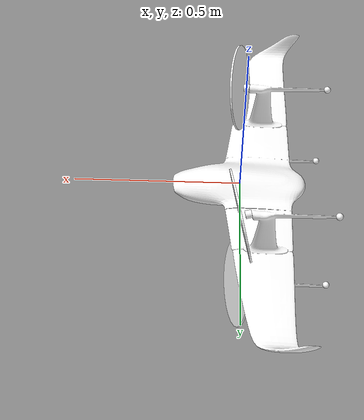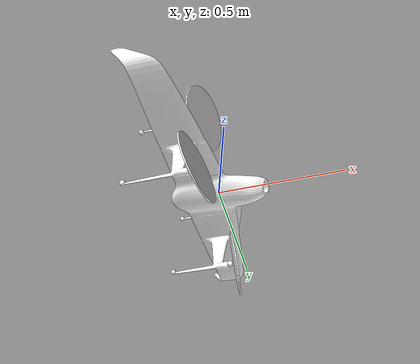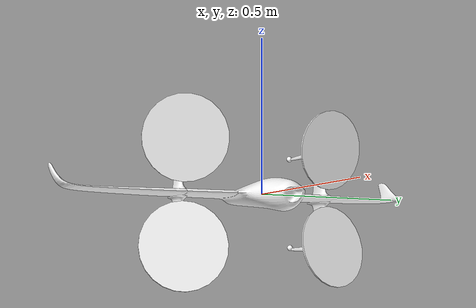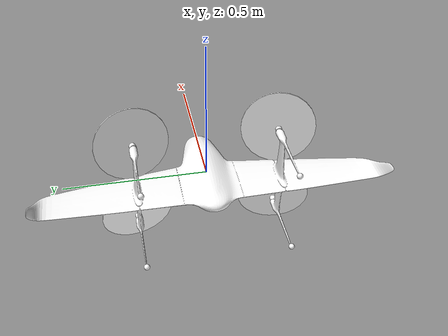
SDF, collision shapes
<?xml version="1.0"?>
<sdf version="1.7">
  <model name="swan_k1_hwing">
    <pose>0 0 0 0 0 0</pose>
    <static>0</static>

    <link name="base_link">`
      <!-- \todo provide proper inertial : actual mass 1.75 kg -->
      <inertial>
        <pose>0 0 0 0 0 0</pose>
        <mass>1.5</mass>
        <inertia>
          <ixx>0.01</ixx>
          <ixy>0</ixy>
          <ixz>0</ixz>
          <iyy>0.01625</iyy>
          <iyz>0</iyz>
          <izz>0.01625</izz>
        </inertia>
      </inertial>
      <collision name="collision">
        <geometry>
          <mesh>
            <uri>model://swan_k1_hwing/meshes/swan_k1_hwing_fuselage.dae</uri>
          </mesh>
        </geometry>
      </collision>
      <visual name="fuselage_visual">
        <geometry>
          <mesh>
            <uri>model://swan_k1_hwing/meshes/swan_k1_hwing_fuselage.dae</uri>
          </mesh>
        </geometry>
        <material>
          <ambient>1 1 1</ambient>
          <diffuse>1 1 1</diffuse>
          <specular>0.5 0.5 0.5</specular>
          <pbr>
            <metal>
              <albedo_map>model://swan_k1_hwing/materials/textures/foxmap.tga</albedo_map>
              <roughness>0.5</roughness>
              <metalness>0.5</metalness>
            </metal>
          </pbr>
        </material>
      </visual>

      <!-- debug visuals for leg collisions -->

      <collision name="leg1_collision">
        <pose>-0.26 -0.25 -0.16 0 0 0</pose>
        <geometry>
          <sphere>
            <radius>0.01</radius>
          </sphere>
        </geometry>
      </collision>
      <collision name="leg2_collision">
        <pose>-0.26 0.25 0.16 0 0 0</pose>
        <geometry>
          <sphere>
            <radius>0.01</radius>
          </sphere>
        </geometry>
      </collision>
      <collision name="leg3_collision">
        <pose>-0.26 0.25 -0.16 0 0 0</pose>
        <geometry>
          <sphere>
            <radius>0.01</radius>
          </sphere>
        </geometry>
      </collision>
      <collision name="leg4_collision">
        <pose>-0.26 -0.25 0.16 0 0 0</pose>
        <geometry>
          <sphere>
            <radius>0.01</radius>
          </sphere>
        </geometry>
      </collision>

      <!-- box visual and collision for horizontal calibration -->

      <!-- debug visuals for lift-drag -->

    </link>

    <!-- https://ardupilot.org/plane/docs/guide-tailsitter.html#nyt-quad-x-motor-tailsitter -->
    <!-- CCW -->
    <link name="motor1_link">
      <pose relative_to="motor1_joint">0 0 0 0 0 0</pose>
      <inertial>
        <pose>0 0 0 0 0 0</pose>
        <mass>0.025</mass>
        <inertia>
          <ixx>0.000130417</ixx>
          <ixy>0</ixy>
          <ixz>0</ixz>
          <iyy>0.000130417</iyy>
          <iyz>0</iyz>
          <izz>0.000260417</izz>
        </inertia>
      </inertial>
      <collision name="motor_collision">
        <geometry>
          <cylinder>
            <length>0.0178</length>
            <radius>0.0112</radius>
          </cylinder>
        </geometry>
      </collision>
      <collision name="prop_collision">
        <pose>0 0 0.022 0 0 0</pose>
        <geometry>
          <cylinder>
            <length>0.005</length>
            <radius>0.13</radius>
          </cylinder>
        </geometry>
      </collision>
      <!-- debug visuals for motor identification -->
      <visual name="motor_visual">
        <pose degrees="true">0 0 -0.008 0 -90 0</pose>
        <geometry>
          <mesh>
            <uri>model://swan_k1_hwing/meshes/swan_k1_hwing_motor.dae</uri>
          </mesh>
        </geometry>
        <material>
          <ambient>1 1 1</ambient>
          <diffuse>1 1 1</diffuse>
          <specular>1 1 1</specular>
          <pbr>
            <metal>
              <albedo_map>model://swan_k1_hwing/materials/textures/blue_metal/blue_metal_basecolor.jpg</albedo_map>
              <metalness_map>model://swan_k1_hwing/materials/textures/blue_metal/blue_metal_metallic.jpg</metalness_map>
              <normal_map>model://swan_k1_hwing/materials/textures/blue_metal/blue_metal_normal.jpg</normal_map>
              <roughness_map>model://swan_k1_hwing/materials/textures/blue_metal/blue_metal_roughness.jpg</roughness_map>
              <roughness>1.0</roughness>
              <metalness>1.0</metalness>
            </metal>
          </pbr>
        </material>
      </visual>
      <visual name='prop_visual'>
        <pose>0 0 0.015 0 0 0</pose>
        <geometry>
          <mesh>
            <scale>1 1 1</scale>
            <uri>model://swan_k1_hwing/meshes/iris_prop_ccw.dae</uri>
          </mesh>
        </geometry>
        <material>
          <diffuse>1.0 1.0 1.0</diffuse>
          <specular>1.0 1.0 1.0</specular>
          <pbr>
            <metal>
              <albedo_map>model://swan_k1_hwing/materials/textures/metal_graphite/metal_graphite_basecolor.jpg</albedo_map>
              <metalness_map>model://swan_k1_hwing/materials/textures/metal_graphite/metal_graphite_metallic.jpg</metalness_map>
              <normal_map>model://swan_k1_hwing/materials/textures/metal_graphite/metal_graphite_normal.jpg</normal_map>
              <roughness_map>model://swan_k1_hwing/materials/textures/metal_graphite/metal_graphite_roughness.jpg</roughness_map>
              <roughness>1.0</roughness>
              <metalness>1.0</metalness>
            </metal>
          </pbr>
        </material>
      </visual>
    </link>
    <joint name='motor1_joint' type='revolute'>
      <pose relative_to="base_link" degrees="true">-0.015 -0.25 -0.16 10 80 0</pose>
      <child>motor1_link</child>
      <parent>base_link</parent>
      <axis>
        <xyz>0 0 1</xyz>
        <limit>
          <lower>-1e+16</lower>
          <upper>1e+16</upper>
        </limit>
        <dynamics>
          <damping>0.004</damping>
        </dynamics>
      </axis>
    </joint>

    <!-- CCW -->
    <link name="motor2_link">
      <pose relative_to="motor2_joint">0 0 0 0 0 0</pose>
      <inertial>
        <pose>0 0 0 0 0 0</pose>
        <mass>0.025</mass>
        <inertia>
          <ixx>0.000130417</ixx>
          <ixy>0</ixy>
          <ixz>0</ixz>
          <iyy>0.000130417</iyy>
          <iyz>0</iyz>
          <izz>0.000260417</izz>
        </inertia>
      </inertial>
      <collision name="motor_collision">
        <geometry>
          <cylinder>
            <length>0.0178</length>
            <radius>0.0112</radius>
          </cylinder>
        </geometry>
      </collision>
      <collision name="prop_collision">
        <pose>0 0 0.022 0 0 0</pose>
        <geometry>
          <cylinder>
            <length>0.005</length>
            <radius>0.13</radius>
          </cylinder>
        </geometry>
      </collision>
      <!-- debug visuals for motor identification -->
      <visual name="motor_visual">
        <pose degrees="true">0 0 -0.008 0 -90 0</pose>
        <geometry>
          <mesh>
            <uri>model://swan_k1_hwing/meshes/swan_k1_hwing_motor.dae</uri>
          </mesh>
        </geometry>
        <material>
          <ambient>1 1 1</ambient>
          <diffuse>1 1 1</diffuse>
          <specular>1 1 1</specular>
          <pbr>
            <metal>
              <albedo_map>model://swan_k1_hwing/materials/textures/blue_metal/blue_metal_basecolor.jpg</albedo_map>
              <metalness_map>model://swan_k1_hwing/materials/textures/blue_metal/blue_metal_metallic.jpg</metalness_map>
              <normal_map>model://swan_k1_hwing/materials/textures/blue_metal/blue_metal_normal.jpg</normal_map>
              <roughness_map>model://swan_k1_hwing/materials/textures/blue_metal/blue_metal_roughness.jpg</roughness_map>
              <roughness>1.0</roughness>
              <metalness>1.0</metalness>
            </metal>
          </pbr>
        </material>
      </visual>
      <visual name='prop_visual'>
        <pose>0 0 0.015 0 0 0</pose>
        <geometry>
          <mesh>
            <scale>1 1 1</scale>
            <uri>model://swan_k1_hwing/meshes/iris_prop_ccw.dae</uri>
          </mesh>
        </geometry>
        <material>
          <diffuse>1.0 1.0 1.0</diffuse>
          <specular>1.0 1.0 1.0</specular>
          <pbr>
            <metal>
              <albedo_map>model://swan_k1_hwing/materials/textures/metal_graphite/metal_graphite_basecolor.jpg</albedo_map>
              <metalness_map>model://swan_k1_hwing/materials/textures/metal_graphite/metal_graphite_metallic.jpg</metalness_map>
              <normal_map>model://swan_k1_hwing/materials/textures/metal_graphite/metal_graphite_normal.jpg</normal_map>
              <roughness_map>model://swan_k1_hwing/materials/textures/metal_graphite/metal_graphite_roughness.jpg</roughness_map>
              <roughness>1.0</roughness>
              <metalness>1.0</metalness>
            </metal>
          </pbr>
        </material>
      </visual>
    </link>
    <joint name='motor2_joint' type='revolute'>
      <pose relative_to="base_link" degrees="true">-0.015 0.25 0.16 -10 100 0</pose>
      <child>motor2_link</child>
      <parent>base_link</parent>
      <axis>
        <xyz>0 0 1</xyz>
        <limit>
          <lower>-1e+16</lower>
          <upper>1e+16</upper>
        </limit>
        <dynamics>
          <damping>0.004</damping>
        </dynamics>
      </axis>
    </joint>

    <!-- CW -->
    <link name="motor3_link">
      <pose relative_to="motor3_joint">0 0 0 0 0 0</pose>
      <inertial>
        <pose>0 0 0 0 0 0</pose>
        <mass>0.025</mass>
        <inertia>
          <ixx>0.000130417</ixx>
          <ixy>0</ixy>
          <ixz>0</ixz>
          <iyy>0.000130417</iyy>
          <iyz>0</iyz>
          <izz>0.000260417</izz>
        </inertia>
      </inertial>
      <collision name="motor_collision">
        <geometry>
          <cylinder>
            <length>0.0178</length>
            <radius>0.0112</radius>
          </cylinder>
        </geometry>
      </collision>
      <collision name="prop_collision">
        <pose>0 0 0.022 0 0 0</pose>
        <geometry>
          <cylinder>
            <length>0.005</length>
            <radius>0.13</radius>
          </cylinder>
        </geometry>
      </collision>
      <!-- debug visuals for motor identification -->
      <visual name="motor_visual">
        <pose degrees="true">0 0 -0.008 0 -90 0</pose>
        <geometry>
          <mesh>
            <uri>model://swan_k1_hwing/meshes/swan_k1_hwing_motor.dae</uri>
          </mesh>
        </geometry>
        <material>
          <ambient>1 1 1</ambient>
          <diffuse>1 1 1</diffuse>
          <specular>1 1 1</specular>
          <pbr>
            <metal>
              <albedo_map>model://swan_k1_hwing/materials/textures/blue_metal/blue_metal_basecolor.jpg</albedo_map>
              <metalness_map>model://swan_k1_hwing/materials/textures/blue_metal/blue_metal_metallic.jpg</metalness_map>
              <normal_map>model://swan_k1_hwing/materials/textures/blue_metal/blue_metal_normal.jpg</normal_map>
              <roughness_map>model://swan_k1_hwing/materials/textures/blue_metal/blue_metal_roughness.jpg</roughness_map>
              <roughness>1.0</roughness>
              <metalness>1.0</metalness>
            </metal>
          </pbr>
        </material>
      </visual>
      <visual name='prop_visual'>
        <pose>0 0 0.015 0 0 0</pose>
        <geometry>
          <mesh>
            <scale>1 1 1</scale>
            <uri>model://swan_k1_hwing/meshes/iris_prop_cw.dae</uri>
          </mesh>
        </geometry>
        <material>
          <diffuse>1.0 1.0 1.0</diffuse>
          <specular>1.0 1.0 1.0</specular>
          <pbr>
            <metal>
              <albedo_map>model://swan_k1_hwing/materials/textures/metal_graphite/metal_graphite_basecolor.jpg</albedo_map>
              <metalness_map>model://swan_k1_hwing/materials/textures/metal_graphite/metal_graphite_metallic.jpg</metalness_map>
              <normal_map>model://swan_k1_hwing/materials/textures/metal_graphite/metal_graphite_normal.jpg</normal_map>
              <roughness_map>model://swan_k1_hwing/materials/textures/metal_graphite/metal_graphite_roughness.jpg</roughness_map>
              <roughness>1.0</roughness>
              <metalness>1.0</metalness>
            </metal>
          </pbr>
        </material>
      </visual>
    </link>
    <joint name='motor3_joint' type='revolute'>
      <pose relative_to="base_link" degrees="true">-0.015 0.25 -0.16 -10 80 0</pose>
      <child>motor3_link</child>
      <parent>base_link</parent>
      <axis>
        <xyz>0 0 1</xyz>
        <limit>
          <lower>-1e+16</lower>
          <upper>1e+16</upper>
        </limit>
        <dynamics>
          <damping>0.004</damping>
        </dynamics>
      </axis>
    </joint>

    <!-- CW -->
    <link name="motor4_link">
      <pose relative_to="motor4_joint">0 0 0 0 0 0</pose>
      <inertial>
        <pose>0 0 0 0 0 0</pose>
        <mass>0.025</mass>
        <inertia>
          <ixx>0.000130417</ixx>
          <ixy>0</ixy>
          <ixz>0</ixz>
          <iyy>0.000130417</iyy>
          <iyz>0</iyz>
          <izz>0.000260417</izz>
        </inertia>
      </inertial>
      <collision name="motor_collision">
        <geometry>
          <cylinder>
            <length>0.0178</length>
            <radius>0.0112</radius>
          </cylinder>
        </geometry>
      </collision>
      <collision name="prop_collision">
        <pose>0 0 0.022 0 0 0</pose>
        <geometry>
          <cylinder>
            <length>0.005</length>
            <radius>0.13</radius>
          </cylinder>
        </geometry>
      </collision>
      <!-- debug visuals for motor identification -->
      <visual name="motor_visual">
        <pose degrees="true">0 0 -0.008 0 -90 0</pose>
        <geometry>
          <mesh>
            <uri>model://swan_k1_hwing/meshes/swan_k1_hwing_motor.dae</uri>
          </mesh>
        </geometry>
        <material>
          <ambient>1 1 1</ambient>
          <diffuse>1 1 1</diffuse>
          <specular>1 1 1</specular>
          <pbr>
            <metal>
              <albedo_map>model://swan_k1_hwing/materials/textures/blue_metal/blue_metal_basecolor.jpg</albedo_map>
              <metalness_map>model://swan_k1_hwing/materials/textures/blue_metal/blue_metal_metallic.jpg</metalness_map>
              <normal_map>model://swan_k1_hwing/materials/textures/blue_metal/blue_metal_normal.jpg</normal_map>
              <roughness_map>model://swan_k1_hwing/materials/textures/blue_metal/blue_metal_roughness.jpg</roughness_map>
              <roughness>1.0</roughness>
              <metalness>1.0</metalness>
            </metal>
          </pbr>
        </material>
      </visual>
      <visual name='prop_visual'>
        <pose>0 0 0.015 0 0 0</pose>
        <geometry>
          <mesh>
            <scale>1 1 1</scale>
            <uri>model://swan_k1_hwing/meshes/iris_prop_cw.dae</uri>
          </mesh>
        </geometry>
        <material>
          <diffuse>1.0 1.0 1.0</diffuse>
          <specular>1.0 1.0 1.0</specular>
          <pbr>
            <metal>
              <albedo_map>model://swan_k1_hwing/materials/textures/metal_graphite/metal_graphite_basecolor.jpg</albedo_map>
              <metalness_map>model://swan_k1_hwing/materials/textures/metal_graphite/metal_graphite_metallic.jpg</metalness_map>
              <normal_map>model://swan_k1_hwing/materials/textures/metal_graphite/metal_graphite_normal.jpg</normal_map>
              <roughness_map>model://swan_k1_hwing/materials/textures/metal_graphite/metal_graphite_roughness.jpg</roughness_map>
              <roughness>1.0</roughness>
              <metalness>1.0</metalness>
            </metal>
          </pbr>
        </material>
      </visual>
    </link>
    <joint name='motor4_joint' type='revolute'>
      <pose relative_to="base_link" degrees="true">-0.015 -0.25 0.16 10 100 0</pose>
      <child>motor4_link</child>
      <parent>base_link</parent>
      <axis>
        <xyz>0 0 1</xyz>
        <limit>
          <lower>-1e+16</lower>
          <upper>1e+16</upper>
        </limit>
        <dynamics>
          <damping>0.004</damping>
        </dynamics>
      </axis>
    </joint>

    <!-- sensors -->
    <link name='imu_link'>
      <inertial>
        <pose>0 0 0 0 0 0</pose>
        <mass>0.15</mass>
        <inertia>
          <ixx>0.00002</ixx>
          <ixy>0</ixy>
          <ixz>0</ixz>
          <iyy>0.00002</iyy>
          <iyz>0</iyz>
          <izz>0.00002</izz>
        </inertia>
      </inertial>
      <sensor name="imu_sensor" type="imu">
        <pose degrees="true">0 0 0 180 0 0</pose>
        <always_on>1</always_on>
        <update_rate>1000.0</update_rate>
      </sensor>
    </link>
    <joint name='imu_joint' type='revolute'>
      <child>imu_link</child>
      <parent>base_link</parent>
      <axis>
        <xyz>0 0 1</xyz>
        <limit>
          <lower>0</lower>
          <upper>0</upper>
          <effort>0</effort>
          <velocity>0</velocity>
        </limit>
        <dynamics>
          <damping>1.0</damping>
        </dynamics>
      </axis>
    </joint>

    <!-- plugins -->
    <plugin filename="gz-sim-joint-state-publisher-system"
      name="gz::sim::systems::JointStatePublisher">
    </plugin>
    <plugin filename="gz-sim-apply-joint-force-system"
      name="gz::sim::systems::ApplyJointForce">
      <joint_name>motor1_joint</joint_name>
    </plugin>
    <plugin filename="gz-sim-apply-joint-force-system"
      name="gz::sim::systems::ApplyJointForce">
      <joint_name>motor2_joint</joint_name>
    </plugin>
    <plugin filename="gz-sim-apply-joint-force-system"
      name="gz::sim::systems::ApplyJointForce">
      <joint_name>motor3_joint</joint_name>
    </plugin>
    <plugin filename="gz-sim-apply-joint-force-system"
      name="gz::sim::systems::ApplyJointForce">
      <joint_name>motor4_joint</joint_name>
    </plugin>

    <!-- prop1 (ccw) lift-drag -->
    <plugin filename="gz-sim-lift-drag-system"
        name="gz::sim::systems::LiftDrag">
      <a0>0.3</a0>
      <alpha_stall>1.4</alpha_stall>
      <cla>4.2500</cla>
      <cda>0.10</cda>
      <cma>0.0</cma>
      <cla_stall>-0.025</cla_stall>
      <cda_stall>0.0</cda_stall>
      <cma_stall>0.0</cma_stall>
      <area>0.002</area>
      <air_density>1.2041</air_density>
      <cp>0.084 0 0</cp>
      <forward>0 1 0</forward>
      <upward>0 0 1</upward>
      <link_name>motor1_link</link_name>
    </plugin>
    <plugin filename="gz-sim-lift-drag-system"
        name="gz::sim::systems::LiftDrag">
      <a0>0.3</a0>
      <alpha_stall>1.4</alpha_stall>
      <cla>4.2500</cla>
      <cda>0.10</cda>
      <cma>0.0</cma>
      <cla_stall>-0.025</cla_stall>
      <cda_stall>0.0</cda_stall>
      <cma_stall>0.0</cma_stall>
      <area>0.002</area>
      <air_density>1.2041</air_density>
      <cp>-0.084 0 0</cp>
      <forward>0 -1 0</forward>
      <upward>0 0 1</upward>
      <link_name>motor1_link</link_name>
    </plugin>

    <!-- prop2 (ccw) lift-drag -->
    <plugin filename="gz-sim-lift-drag-system"
        name="gz::sim::systems::LiftDrag">
      <a0>0.3</a0>
      <alpha_stall>1.4</alpha_stall>
      <cla>4.2500</cla>
      <cda>0.10</cda>
      <cma>0.0</cma>
      <cla_stall>-0.025</cla_stall>
      <cda_stall>0.0</cda_stall>
      <cma_stall>0.0</cma_stall>
      <area>0.002</area>
      <air_density>1.2041</air_density>
      <cp>0.084 0 0</cp>
      <forward>0 1 0</forward>
      <upward>0 0 1</upward>
      <link_name>motor2_link</link_name>
    </plugin>
    <plugin filename="gz-sim-lift-drag-system"
        name="gz::sim::systems::LiftDrag">
      <a0>0.3</a0>
      <alpha_stall>1.4</alpha_stall>
      <cla>4.2500</cla>
      <cda>0.10</cda>
      <cma>0.0</cma>
      <cla_stall>-0.025</cla_stall>
      <cda_stall>0.0</cda_stall>
      <cma_stall>0.0</cma_stall>
      <area>0.002</area>
      <air_density>1.2041</air_density>
      <cp>-0.084 0 0</cp>
      <forward>0 -1 0</forward>
      <upward>0 0 1</upward>
      <link_name>motor2_link</link_name>
    </plugin>

    <!-- prop3 (cw) lift-drag -->
    <plugin filename="gz-sim-lift-drag-system"
        name="gz::sim::systems::LiftDrag">
      <a0>0.3</a0>
      <alpha_stall>1.4</alpha_stall>
      <cla>4.2500</cla>
      <cda>0.10</cda>
      <cma>0.0</cma>
      <cla_stall>-0.025</cla_stall>
      <cda_stall>0.0</cda_stall>
      <cma_stall>0.0</cma_stall>
      <area>0.002</area>
      <air_density>1.2041</air_density>
      <cp>0.084 0 0</cp>
      <forward>0 -1 0</forward>
      <upward>0 0 1</upward>
      <link_name>motor3_link</link_name>
    </plugin>
    <plugin filename="gz-sim-lift-drag-system"
        name="gz::sim::systems::LiftDrag">
      <a0>0.3</a0>
      <alpha_stall>1.4</alpha_stall>
      <cla>4.2500</cla>
      <cda>0.10</cda>
      <cma>0.0</cma>
      <cla_stall>-0.025</cla_stall>
      <cda_stall>0.0</cda_stall>
      <cma_stall>0.0</cma_stall>
      <area>0.002</area>
      <air_density>1.2041</air_density>
      <cp>-0.084 0 0</cp>
      <forward>0 1 0</forward>
      <upward>0 0 1</upward>
      <link_name>motor3_link</link_name>
    </plugin>

    <!-- prop4 (cw) lift-drag -->
    <plugin filename="gz-sim-lift-drag-system"
        name="gz::sim::systems::LiftDrag">
      <a0>0.3</a0>
      <alpha_stall>1.4</alpha_stall>
      <cla>4.2500</cla>
      <cda>0.10</cda>
      <cma>0.0</cma>
      <cla_stall>-0.025</cla_stall>
      <cda_stall>0.0</cda_stall>
      <cma_stall>0.0</cma_stall>
      <area>0.002</area>
      <air_density>1.2041</air_density>
      <cp>0.084 0 0</cp>
      <forward>0 -1 0</forward>
      <upward>0 0 1</upward>
      <link_name>motor4_link</link_name>
    </plugin>
    <plugin filename="gz-sim-lift-drag-system"
        name="gz::sim::systems::LiftDrag">
      <a0>0.3</a0>
      <alpha_stall>1.4</alpha_stall>
      <cla>4.2500</cla>
      <cda>0.10</cda>
      <cma>0.0</cma>
      <cla_stall>-0.025</cla_stall>
      <cda_stall>0.0</cda_stall>
      <cma_stall>0.0</cma_stall>
      <area>0.002</area>
      <air_density>1.2041</air_density>
      <cp>-0.084 0 0</cp>
      <forward>0 1 0</forward>
      <upward>0 0 1</upward>
      <link_name>motor4_link</link_name>
    </plugin>

    <!-- wing lift-drag -->
    <plugin filename="gz-sim-lift-drag-system"
        name="gz::sim::systems::LiftDrag">
      <a0>0.13</a0>
      <cla>3.7</cla>
      <cda>0.06417112299</cda>
      <cma>0.0</cma>
      <alpha_stall>0.3391428111</alpha_stall>
      <cla_stall>-3.85</cla_stall>
      <cda_stall>-0.9233984055</cda_stall>
      <cma_stall>0.0</cma_stall>
      <cp>-0.025 0 0</cp>
      <area>0.18</area>
      <air_density>1.2041</air_density>
      <forward>1 0 0</forward>
      <upward>0 0 1</upward>
      <link_name>base_link</link_name>
    </plugin>
    <!-- left_winglet lift-drag -->
    <plugin filename="gz-sim-lift-drag-system"
        name="gz::sim::systems::LiftDrag">
      <a0>0.0</a0>
      <cla>4.752798721</cla>
      <cda>0.6417112299</cda>
      <cma>0.0</cma>
      <alpha_stall>0.3391428111</alpha_stall>
      <cla_stall>-3.85</cla_stall>
      <cda_stall>-0.9233984055</cda_stall>
      <cma_stall>0.0</cma_stall>
      <cp>-0.14 0.59 0.035</cp>
      <area>0.0068</area>
      <air_density>1.2041</air_density>
      <forward>1 0 0</forward>
      <upward>0 1 0</upward>
      <link_name>base_link</link_name>
    </plugin>
    <!-- right_winglet lift-drag -->
    <plugin filename="gz-sim-lift-drag-system"
        name="gz::sim::systems::LiftDrag">
      <a0>0.0</a0>
      <cla>4.752798721</cla>
      <cda>0.6417112299</cda>
      <cma>0.0</cma>
      <alpha_stall>0.3391428111</alpha_stall>
      <cla_stall>-3.85</cla_stall>
      <cda_stall>-0.9233984055</cda_stall>
      <cma_stall>0.0</cma_stall>
      <cp>-0.14 -0.59 0.035</cp>
      <area>0.0068</area>
      <air_density>1.2041</air_density>
      <forward>1 0 0</forward>
      <upward>0 -1 0</upward>
      <link_name>base_link</link_name>
    </plugin>
    <!-- left_vstab lift-drag -->
    <plugin filename="gz-sim-lift-drag-system"
        name="gz::sim::systems::LiftDrag">
      <a0>0.0</a0>
      <cla>4.752798721</cla>
      <cda>0.6417112299</cda>
      <cma>0.0</cma>
      <alpha_stall>0.3391428111</alpha_stall>
      <cla_stall>-3.85</cla_stall>
      <cda_stall>-0.9233984055</cda_stall>
      <cma_stall>0.0</cma_stall>
      <cp>-0.07 0.25 0</cp>
      <area>0.01</area>
      <air_density>1.2041</air_density>
      <forward>1 0 0</forward>
      <upward>0 1 0</upward>
      <link_name>base_link</link_name>
    </plugin>
    <!-- right_vstab lift-drag -->
    <plugin filename="gz-sim-lift-drag-system"
        name="gz::sim::systems::LiftDrag">
      <a0>0.0</a0>
      <cla>4.752798721</cla>
      <cda>0.6417112299</cda>
      <cma>0.0</cma>
      <alpha_stall>0.3391428111</alpha_stall>
      <cla_stall>-3.85</cla_stall>
      <cda_stall>-0.9233984055</cda_stall>
      <cma_stall>0.0</cma_stall>
      <cp>-0.07 -0.25 0</cp>
      <area>0.01</area>
      <air_density>1.2041</air_density>
      <forward>1 0 0</forward>
      <upward>0 -1 0</upward>
      <link_name>base_link</link_name>
    </plugin>

    <plugin name="ArduPilotPlugin" filename="ArduPilotPlugin">
      <fdm_addr>127.0.0.1</fdm_addr>
      <fdm_port_in>9002</fdm_port_in>
      <connectionTimeoutMaxCount>5</connectionTimeoutMaxCount>
      <lock_step>1</lock_step>
      <no_time_sync>1</no_time_sync>
      <modelXYZToAirplaneXForwardZDown degrees="true">0 0 0 180 0 0</modelXYZToAirplaneXForwardZDown>
      <gazeboXYZToNED degrees="true">0 0 0 180 0 90</gazeboXYZToNED>
      <imuName>imu_sensor</imuName>

      <!--
          SERVO1_FUNCTION   33 (Motor1 Front Right CCW)
          SERVO1_MAX        2000
          SERVO1_MIN        1000
          SERVO1_REVERSED   0
          SERVO1_TRIM       1500
       -->
      <control channel="0">
        <jointName>motor1_joint</jointName>
        <useForce>1</useForce>
        <multiplier>1000</multiplier>
        <offset>0</offset>
        <servo_min>1000</servo_min>
        <servo_max>2000</servo_max>
        <type>VELOCITY</type>
        <p_gain>0.20</p_gain>
        <i_gain>0</i_gain>
        <d_gain>0</d_gain>
        <i_max>0</i_max>
        <i_min>0</i_min>
        <cmd_max>5.0</cmd_max>
        <cmd_min>-5.0</cmd_min>
      </control>

      <!--
          SERVO2_FUNCTION   34 (Motor2 Back Left CCW)
          SERVO2_MAX        2000
          SERVO2_MIN        1000
          SERVO2_REVERSED   0
          SERVO2_TRIM       1500
       -->
      <control channel="1">
        <jointName>motor2_joint</jointName>
        <useForce>1</useForce>
        <multiplier>1000</multiplier>
        <offset>0</offset>
        <servo_min>1000</servo_min>
        <servo_max>2000</servo_max>
        <type>VELOCITY</type>
        <p_gain>0.20</p_gain>
        <i_gain>0</i_gain>
        <d_gain>0</d_gain>
        <i_max>0</i_max>
        <i_min>0</i_min>
        <cmd_max>5.0</cmd_max>
        <cmd_min>-5.0</cmd_min>
      </control>

      <!--
          SERVO3_FUNCTION   35 (Motor3 Front Left CW)
          SERVO3_MAX        2000
          SERVO3_MIN        1000
          SERVO3_REVERSED   0
          SERVO3_TRIM       1500
       -->
      <control channel="2">
        <jointName>motor3_joint</jointName>
        <useForce>1</useForce>
        <multiplier>-1000</multiplier>
        <offset>0</offset>
        <servo_min>1000</servo_min>
        <servo_max>2000</servo_max>
        <type>VELOCITY</type>
        <p_gain>0.20</p_gain>
        <i_gain>0</i_gain>
        <d_gain>0</d_gain>
        <i_max>0</i_max>
        <i_min>0</i_min>
        <cmd_max>5.0</cmd_max>
        <cmd_min>-5.0</cmd_min>
      </control>

      <!--
          SERVO4_FUNCTION   36 (Motor4 Back Right CW)
          SERVO4_MAX        2000
          SERVO4_MIN        1000
          SERVO4_REVERSED   0
          SERVO4_TRIM       1500
       -->
      <control channel="3">
        <jointName>motor4_joint</jointName>
        <useForce>1</useForce>
        <multiplier>-1000</multiplier>
        <offset>0</offset>
        <servo_min>1000</servo_min>
        <servo_max>2000</servo_max>
        <type>VELOCITY</type>
        <p_gain>0.20</p_gain>
        <i_gain>0</i_gain>
        <d_gain>0</d_gain>
        <i_max>0</i_max>
        <i_min>0</i_min>
        <cmd_max>5.0</cmd_max>
        <cmd_min>-5.0</cmd_min>
      </control>

    </plugin>

  </model>
</sdf>
